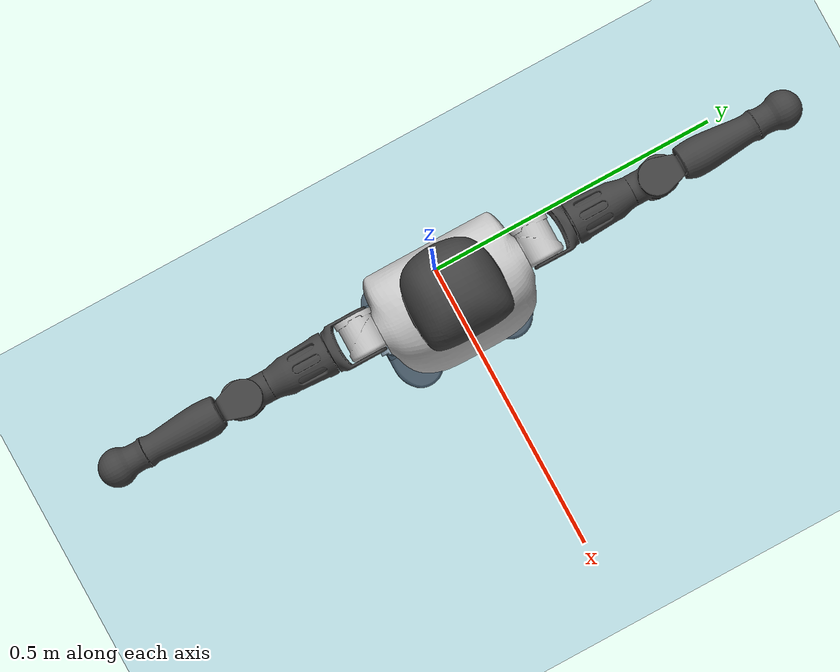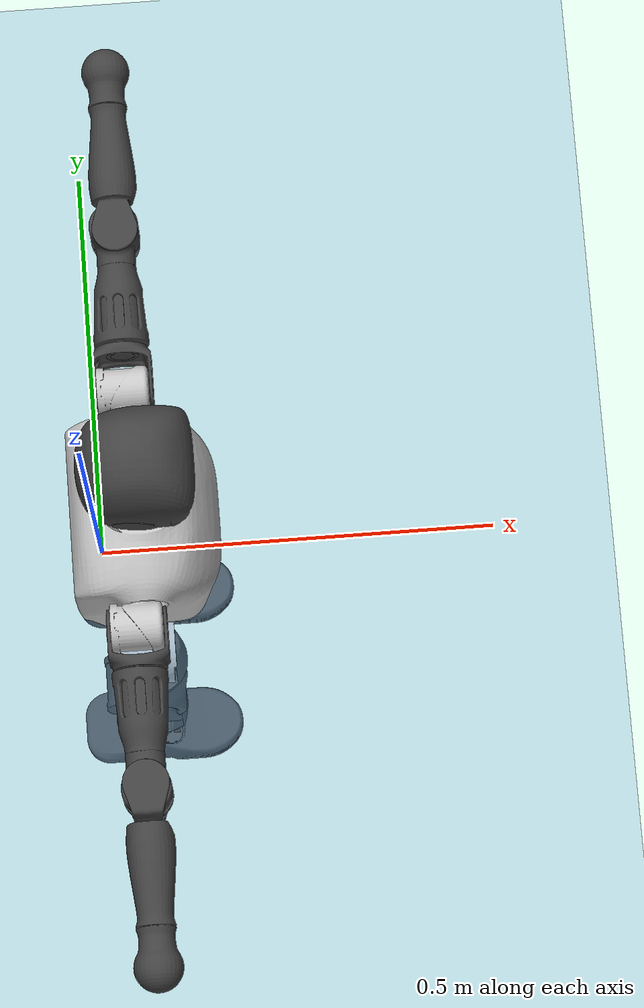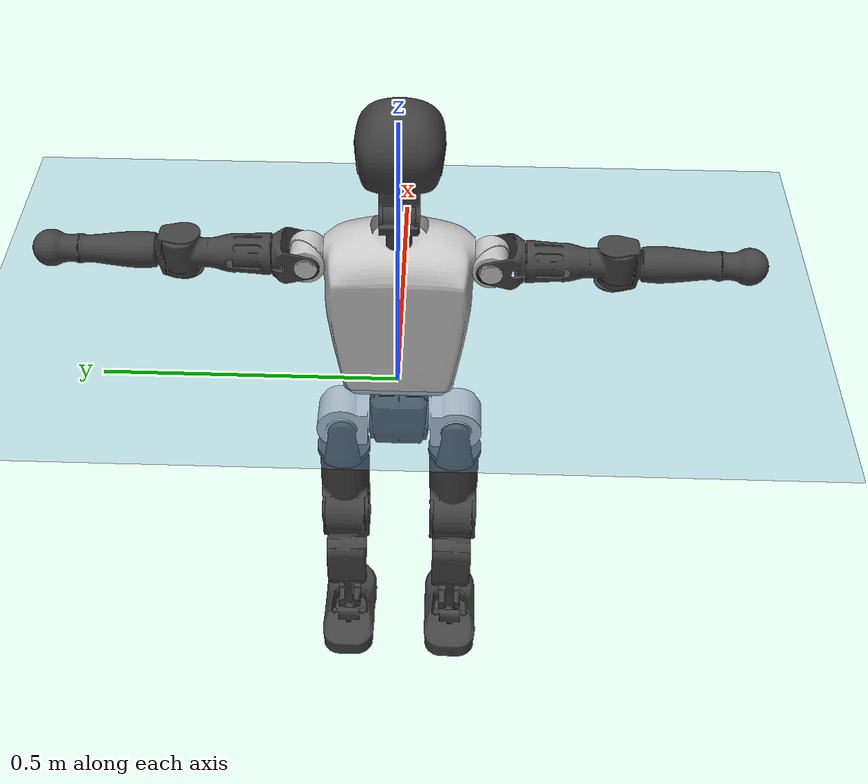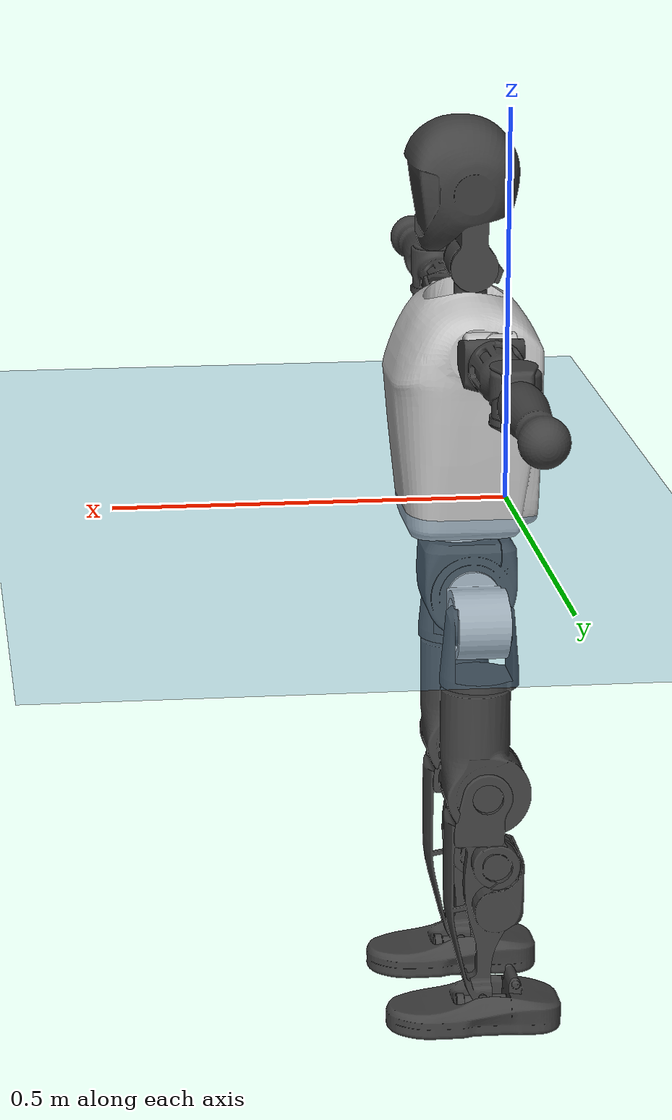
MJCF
<mujoco model="T1">
  <compiler angle="radian" assetdir="assets" balanceinertia="true" inertiafromgeom="false"/>

  <option timestep="0.005" density="1.2" viscosity="2e-05"/>

  <size nkey="1"/>

  <visual>
    <quality shadowsize="8192"/>
    <map shadowclip="0.5"/>
  </visual>

  <default>
    <default class="/">
      <joint armature="0.01" damping="0.01" frictionloss="0.1"/>
      <geom contype="0" conaffinity="0" group="1" solref="-1000 -80"/>
      <site size="0.01 0.005 0.005" group="5"/>
      <general forcelimited="true" biastype="affine" gainprm="25" biasprm="0 -25 -0.6"/>
      <default class="t1">
        <geom rgba="0.25 0.25 0.25 1"/>
        <default class="visual">
          <geom type="mesh" group="2"/>
        </default>
        <default class="collision">
          <geom group="3"/>
        </default>
        <default class="foot">
          <geom size="0.1115 0.05 0.015" type="box" condim="6" group="4" priority="1" solimp="0.015 1 0.015"/>
        </default>
        <default class="reward_collision_sphere">
          <geom group="5" rgba="1 0 0 1"/>
        </default>
      </default>
    </default>
  </default>

  <asset>
    <texture type="skybox" colorspace="auto" name="//unnamed_texture_0" builtin="gradient" rgb1="0.95 0.95 0.95" rgb2="0.95 0.95 0.95" width="100" height="600"/>
    <texture type="2d" colorspace="auto" name="texplane" builtin="checker" rgb1="0.345 0.575 0.748" rgb2="0.345 0.575 0.748" markrgb="1 1 1" width="512" height="512"/>
    <material name="MatPlane" class="/" texture="texplane" texuniform="true" texrepeat="2 2" specular="0.9"/>
    <mesh name="Trunk" class="/" file="Trunk.stl"/>
    <mesh name="H1" class="/" file="H1.stl"/>
    <mesh name="H2" class="/" file="H2.stl"/>
    <mesh name="AL1" class="/" file="AL1.stl"/>
    <mesh name="AL2" class="/" file="AL2.stl"/>
    <mesh name="AL3" class="/" file="AL3.stl"/>
    <mesh name="left_hand_link" class="/" file="left_hand_link.stl"/>
    <mesh name="AR1" class="/" file="AR1.stl"/>
    <mesh name="AR2" class="/" file="AR2.stl"/>
    <mesh name="AR3" class="/" file="AR3.stl"/>
    <mesh name="right_hand_link" class="/" file="right_hand_link.stl"/>
    <mesh name="Waist" class="/" file="Waist.stl"/>
    <mesh name="Hip_Pitch_Left" class="/" file="Hip_Pitch_Left.stl"/>
    <mesh name="Hip_Roll_Left" class="/" file="Hip_Roll_Left.stl"/>
    <mesh name="Hip_Yaw_Left" class="/" file="Hip_Yaw_Left.stl"/>
    <mesh name="Shank_Left" class="/" file="Shank_Left.stl"/>
    <mesh name="Ankle_Cross_Left" class="/" file="Ankle_Cross_Left.stl"/>
    <mesh name="left_foot_link" class="/" file="left_foot_link.stl"/>
    <mesh name="Hip_Pitch_Right" class="/" file="Hip_Pitch_Right.stl"/>
    <mesh name="Hip_Roll_Right" class="/" file="Hip_Roll_Right.stl"/>
    <mesh name="Hip_Yaw_Right" class="/" file="Hip_Yaw_Right.stl"/>
    <mesh name="Shank_Right" class="/" file="Shank_Right.stl"/>
    <mesh name="Ankle_Cross_Right" class="/" file="Ankle_Cross_Right.stl"/>
    <mesh name="right_foot_link" class="/" file="right_foot_link.stl"/>
  </asset>

  <worldbody>
    <geom name="floor" class="/" size="100 100 0.125" type="plane" group="0" material="MatPlane"/>
    <light name="toplight_shadow" class="/" pos="0 0 5" dir="0.0990148 0.0990148 -0.990148" type="directional" ambient="0.04 0.04 0.04" diffuse="0.55 0.55 0.55" specular="0.12 0.12 0.12"/>
    <light name="toplight_fill" class="/" pos="0 0 5" dir="0.0990148 0.0990148 -0.990148" type="directional" castshadow="false" ambient="0.04 0.04 0.04" diffuse="0.3 0.3 0.3" specular="0.08 0.08 0.08"/>
    <body name="trunk" childclass="t1" pos="7.68692e-05 0.000504464 -0.000503247" quat="1 -7.16942e-06 6.8549e-05 -2.26176e-05">
      <inertial pos="0.0426034 -1.32215e-05 0.105696" quat="0.999924 -0.0025399 -0.0118239 -0.00254302" mass="9.13351" diaginertia="0.02827 0.0635087 0.0575821"/>
      <joint name="//unnamed_joint_0" type="free" armature="0" damping="0" frictionloss="0"/>
      <geom name="//unnamed_geom_1" class="visual" rgba="0.76 0.76 0.76 1" mesh="Trunk"/>
      <geom name="//unnamed_geom_2" class="collision" size="0.0689022 0.0918696 0.137804" pos="0.0474423 0 0.120745" type="box"/>
      <geom name="//unnamed_geom_3" class="reward_collision_sphere" size="0.10565" pos="0.0474423 0 0.100621"/>
      <geom name="//unnamed_geom_4" class="reward_collision_sphere" size="0.0137804" pos="0.0474423 0.0815295 0"/>
      <geom name="//unnamed_geom_5" class="reward_collision_sphere" size="0.0137804" pos="0.0474423 -0.0815295 0"/>
      <geom name="//unnamed_geom_6" class="reward_collision_sphere" size="0.0137804" pos="0.0474423 0.102631 0.181118"/>
      <geom name="//unnamed_geom_7" class="reward_collision_sphere" size="0.0137804" pos="0.0474423 -0.102631 0.181118"/>
      <site name="imu" pos="0.000227561 0.000461962 0.002974" size="0.00918696"/>
      <camera name="track" pos="0 -1.91834 0" quat="0.707107 0.707107 0 0" mode="trackcom"/>
      <camera name="ego_camera" pos="0.096466 0 0.422609" quat="-0.5 -0.5 0.5 0.5"/>
      <body name="H1" pos="0.0486624 0.000714845 0.244512" quat="1 -1.70975e-05 4.54938e-05 -3.92802e-05">
        <inertial pos="-0.00109832 -0.00213241 0.0571765" quat="0.764198 -0.0134823 0.00232009 0.644837" mass="0.342246" diaginertia="7.53876e-05 0.000179286 0.000154352"/>
        <joint name="AAHead_yaw" pos="0 0 0" axis="-0.00245572 -0.000557745 0.999997" range="-1.58355 1.5877" armature="0.00931272" damping="0.0109173" frictionloss="0.0958788"/>
        <geom name="//unnamed_geom_8" class="visual" mesh="H1"/>
        <body name="H2" pos="-0.000542492 -0.000513353 0.0607186" quat="1 6.71482e-05 -0.000196734 -0.000535498">
          <inertial pos="0.00630623 -7.61064e-05 0.0986591" quat="0.987949 0.110556 -0.0746472 -0.0784945" mass="0.488841" diaginertia="0.00063044 0.00158531 0.00175373"/>
          <joint name="Head_pitch" pos="0 0 0" axis="-0.0026321 -0.999995 -0.00159798" range="-1.21324 0.350585" armature="0.00905179" damping="0.00575861" frictionloss="0.091087"/>
          <geom name="//unnamed_geom_9" class="visual" mesh="H2"/>
          <geom name="//unnamed_geom_10" class="collision" size="0.0734957" pos="0.00790705 0 0.110683"/>
          <geom name="//unnamed_geom_11" class="reward_collision_sphere" size="0.0826826" pos="0.0158141 0 0.100621"/>
        </body>
      </body>
      <body name="AL1" pos="0.0462104 0.101884 0.221217" quat="1 9.34318e-05 0.000390025 -5.0091e-05">
        <inertial pos="-0.00072021 0.0437304 -0.000108302" quat="0.504863 0.495493 -0.502983 0.496598" mass="0.413217" diaginertia="0.000430138 0.00105647 0.000305393"/>
        <joint name="Left_Shoulder_Pitch" pos="0 0 0" axis="-0.00302451 0.999995 0.000751898" range="-3.29465 1.21908" armature="0.0095673" damping="0.0123728" frictionloss="0.0954531"/>
        <geom name="//unnamed_geom_12" class="visual" rgba="0.76 0.76 0.76 1" mesh="AL1"/>
        <body name="AL2" pos="0.000545696 0.0452093 -0.000103525" quat="1 7.24052e-05 3.7531e-05 0.000169291">
          <inertial pos="0.00400648 0.0353635 -0.000245903" quat="0.487431 0.513329 -0.484382 0.51408" mass="0.124097" diaginertia="0.000123573 0.0002798 0.000182802"/>
          <joint name="Left_Shoulder_Roll" pos="0 0 0" axis="-1 5.96554e-05 -0.00019263" stiffness="0.00278212" range="-1.57278 1.73164" armature="0.00879485" damping="0.00204188" frictionloss="0.0905247"/>
          <geom name="//unnamed_geom_13" class="visual" mesh="AL2"/>
          <body name="AL3" pos="0.00168133 0.0589885 0.00112753" quat="1 -3.68951e-05 -2.73264e-05 -0.000120473">
            <inertial pos="5.75685e-05 0.082336 -0.000968105" quat="0.710329 0.703869 -0.000931506 7.49283e-05" mass="0.802124" diaginertia="0.00402863 0.0106968 0.000647"/>
            <joint name="Left_Elbow_Pitch" pos="0 0 0" axis="0.000154103 -1 -0.000207645" range="-2.26742 2.28664" armature="0.00905059" damping="0.00980157" frictionloss="0.0960686"/>
            <geom name="//unnamed_geom_14" class="visual" mesh="AL3"/>
            <geom name="//unnamed_geom_15" class="collision" size="0.0275609 0.0689022" pos="0 0.0479585 0" quat="0.707105 0.707108 0 0" type="cylinder"/>
            <geom name="//unnamed_geom_16" class="reward_collision_sphere" size="0.033073"/>
            <body name="left_hand_link" pos="0.00143653 0.140834 0.00131527" quat="1 1.65575e-05 -0.000324502 -0.000173153">
              <inertial pos="-0.000865375 0.104542 9.06477e-05" quat="0.706801 0.707412 0.000615263 0.000233465" mass="0.256351" diaginertia="0.00254065 0.00656044 0.00022149"/>
              <joint name="Left_Elbow_Yaw" pos="0 0 0" axis="-0.000671994 -0.00265417 0.999996" range="-2.42818 0.020676" armature="0.00928216" damping="0.00822843" frictionloss="0.0876761"/>
              <geom name="//unnamed_geom_17" class="visual" mesh="left_hand_link"/>
              <geom name="//unnamed_geom_18" class="collision" size="0.0275609 0.0803859" pos="0 0.124692 0" quat="0.707105 0.707108 0 0" type="cylinder"/>
              <geom name="//unnamed_geom_19" class="reward_collision_sphere" size="0.0459348"/>
              <geom name="//unnamed_geom_20" class="reward_collision_sphere" size="0.0321544" pos="0 0.105509 0"/>
              <geom name="//unnamed_geom_21" class="reward_collision_sphere" size="0.0321544" pos="0 0.206222 0"/>
            </body>
          </body>
        </body>
      </body>
      <body name="AR1" pos="0.0447171 -0.100661 0.219739" quat="1 -8.3108e-05 0.000591259 -8.06336e-05">
        <inertial pos="-0.00102503 -0.0435112 -0.000424055" quat="0.50389 0.495921 -0.504323 0.495798" mass="0.406377" diaginertia="0.000423839 0.00106219 0.000303048"/>
        <joint name="Right_Shoulder_Pitch" pos="0 0 0" axis="-0.00783498 -0.999969 0.000769909" range="-1.22689 3.3186" armature="0.0089436" damping="0.00268034" frictionloss="0.0887279"/>
        <geom name="//unnamed_geom_22" class="visual" rgba="0.76 0.76 0.76 1" mesh="AR1"/>
        <body name="AR2" pos="0.000298918 -0.0440226 0.000311308" quat="1 -1.51553e-05 -7.69116e-05 5.86936e-05">
          <inertial pos="0.00247238 -0.0364015 0.000961406" quat="0.512048 0.488057 -0.510826 0.488532" mass="0.125693" diaginertia="0.000124474 0.000285354 0.000183928"/>
          <joint name="Right_Shoulder_Roll" pos="0 0 0" axis="-0.999937 -0.00252942 0.0109493" range="-1.73467 1.5602" armature="0.00895508" damping="0.00794013" frictionloss="0.0907029"/>
          <geom name="//unnamed_geom_23" class="visual" mesh="AR2"/>
          <body name="AR3" pos="-0.000479259 -0.0579541 0.000852314" quat="1 0.000418345 1.29136e-05 2.17173e-05">
            <inertial pos="-0.000499394 -0.0823714 -0.000289684" quat="0.706771 0.707434 0.00154569 0.00305517" mass="0.800047" diaginertia="0.00404607 0.0105888 0.000650701"/>
            <joint name="Right_Elbow_Pitch" pos="0 0 0" axis="-0.000394587 0.999999 -0.00110095" range="-2.26254 2.26881" armature="0.00932847" damping="0.00710162" frictionloss="0.0921563"/>
            <geom name="//unnamed_geom_24" class="visual" mesh="AR3"/>
            <geom name="//unnamed_geom_25" class="collision" size="0.0275609 0.0689022" pos="0 -0.0479585 0" quat="0.707105 0.707108 0 0" type="cylinder"/>
            <geom name="//unnamed_geom_26" class="reward_collision_sphere" size="0.033073"/>
            <body name="right_hand_link" pos="-0.000141613 -0.141007 -0.000687473" quat="1 -0.000225402 -5.4395e-05 -2.20361e-05">
              <inertial pos="-0.000573058 -0.105067 0.000278964" quat="0.707977 0.706228 -0.00319983 -0.00110722" mass="0.253489" diaginertia="0.00256064 0.00663418 0.000224105"/>
              <joint name="Right_Elbow_Yaw" pos="0 0 0" axis="0.000266309 0.000820954 1" range="-0.00985821 2.43856" armature="0.00902876" damping="0.00731414" frictionloss="0.0918247"/>
              <geom name="//unnamed_geom_27" class="visual" mesh="right_hand_link"/>
              <geom name="//unnamed_geom_28" class="collision" size="0.0275609 0.0803859" pos="0 -0.124692 0" quat="0.707105 0.707108 0 0" type="cylinder"/>
              <geom name="//unnamed_geom_29" class="reward_collision_sphere" size="0.0459348"/>
              <geom name="//unnamed_geom_30" class="reward_collision_sphere" size="0.0321544" pos="0 -0.105509 0"/>
              <geom name="//unnamed_geom_31" class="reward_collision_sphere" size="0.0321544" pos="0 -0.206222 0"/>
            </body>
          </body>
        </body>
      </body>
      <body name="Waist" pos="0.0486147 -0.000968779 -0.115582" quat="1 0.000108072 0.000211141 4.10096e-05">
        <inertial pos="0.00206306 -0.0002282 0.00796176" quat="0.983636 0.000375593 -0.180151 0.00242394" mass="1.958" diaginertia="0.00162739 0.00423859 0.0048422"/>
        <joint name="Waist" pos="0 0 0" axis="-0.00256288 0.00284766 0.999993" range="-1.56783 1.57096" armature="0.00915902" damping="0.0122015" frictionloss="0.0891508"/>
        <geom name="//unnamed_geom_32" class="visual" mesh="Waist"/>
        <body name="Hip_Pitch_Left" pos="-0.000665563 0.10119 -0.000104012" quat="1 5.66652e-05 9.9283e-05 -0.000115217">
          <inertial pos="0.00030901 -0.00724158 -0.0181418" quat="0.975887 0.217605 0.0170615 0.0007621" mass="0.79247" diaginertia="0.00056081 0.00121078 0.00132002"/>
          <joint name="Left_Hip_Pitch" pos="0 0 0" axis="0.00228716 0.999996 0.00134875" range="-1.81112 1.57045" armature="0.00925626" damping="0.00922673" frictionloss="0.089467"/>
          <geom name="//unnamed_geom_33" class="visual" rgba="0.76 0.76 0.76 1" mesh="Hip_Pitch_Left"/>
          <body name="Hip_Roll_Left" pos="0.000958676 -0.000682832 -0.0213413" quat="1 -0.000539667 -0.000291144 -0.00038983">
            <inertial pos="0.000858824 0.000348768 -0.0538279" quat="0.710474 -0.00625927 -0.00786319 0.703651" mass="0.299376" diaginertia="0.0005428 0.00124687 0.000535252"/>
            <joint name="Left_Hip_Roll" pos="0 0 0" axis="-0.999992 -0.0024058 -0.00314703" stiffness="0.000415623" range="-1.55683 0.210628" armature="0.00928655" damping="0.0120926" frictionloss="0.0922654"/>
            <geom name="//unnamed_geom_34" class="visual" mesh="Hip_Roll_Left"/>
            <geom name="//unnamed_geom_35" class="reward_collision_sphere" size="0.0505283"/>
            <body name="Hip_Yaw_Left" pos="0.00209454 -0.000481534 -0.0828929" quat="1 -0.000276745 -3.08273e-05 -0.000354822">
              <inertial pos="-0.00483789 -0.000802629 -0.0890168" quat="0.695261 -0.0347469 -0.0305873 0.717265" mass="1.67877" diaginertia="0.00799809 0.0204534 0.00264767"/>
              <joint name="Left_Hip_Yaw" pos="0 0 0" axis="-0.00608486 -0.000201226 -0.999981" stiffness="0.000333524" range="-0.997711 0.994693" armature="0.00939651" damping="0.00711017" frictionloss="0.0879637"/>
              <geom name="//unnamed_geom_36" class="visual" mesh="Hip_Yaw_Left"/>
              <geom name="//unnamed_geom_37" class="collision" size="0.0459348 0.0734957" type="cylinder"/>
              <body name="Shank_Left" pos="-0.011662 -0.000401533 -0.136012" quat="1 -9.07357e-06 2.35212e-07 -1.24516e-05">
                <inertial pos="-0.00481061 0.000478789 -0.125306" quat="0.997505 0.000228847 -0.0259936 0.0656335" mass="1.36147" diaginertia="0.0107884 0.0284512 0.00193709"/>
                <joint name="Left_Knee_Pitch" pos="0 0 0" axis="0.00226415 0.999997 0.00129325" range="-0.0196747 2.32561" armature="0.00916127" damping="0.00843154" frictionloss="0.0928768"/>
                <geom name="//unnamed_geom_38" class="visual" mesh="Shank_Left"/>
                <geom name="//unnamed_geom_39" class="collision" size="0.0459348 0.0689022" pos="0 0 -0.120745" type="cylinder"/>
                <geom name="//unnamed_geom_40" class="reward_collision_sphere" size="0.0597152"/>
                <body name="Ankle_Cross_Left" pos="-0.00014035 0.000218003 -0.281263" quat="1 -0.000294755 -0.000240354 0.000183287">
                  <inertial pos="-0.00338748 0.000207488 -0.00713358" quat="0.443044 0.551104 0.550992 0.443175" mass="0.0570115" diaginertia="8.90302e-06 2.10851e-05 1.17384e-05"/>
                  <joint name="Left_Ankle_Pitch" pos="0 0 0" axis="-0.00323175 0.99999 -0.00322059" range="-0.866062 0.344499" armature="0.00902527" damping="0.00411334" frictionloss="0.094969"/>
                  <geom name="//unnamed_geom_41" class="visual" mesh="Ankle_Cross_Left"/>
                  <body name="left_foot_link" pos="-0.000367101 -0.00106464 -0.0121889" quat="1 4.98647e-05 9.85135e-05 0.000166164">
                    <inertial pos="-0.000315735 -0.000109733 -0.00910189" quat="0.00316804 0.622606 -0.00177768 0.782527" mass="0.528652" diaginertia="0.000847602 0.00191538 0.00223419"/>
                    <joint name="Left_Ankle_Roll" pos="0 0 0" axis="-0.999999 0.0013641 -0.0009968" range="-0.433873 0.452555" armature="0.00962091" damping="0.00877621" frictionloss="0.0903693"/>
                    <geom name="//unnamed_geom_42" class="visual" mesh="left_foot_link"/>
                    <geom name="left_foot" class="foot" size="0.102688 0.0435715 0.0140077" pos="0.00790705 0 -0.0150932"/>
                    <geom name="//unnamed_geom_44" class="reward_collision_sphere" size="0.0477722" pos="0.00790705 0 -0.0150932"/>
                    <geom name="//unnamed_geom_45" class="reward_collision_sphere" size="0.0275609" pos="0.075117 -0.0220609 -0.0150932"/>
                    <geom name="//unnamed_geom_46" class="reward_collision_sphere" size="0.0275609" pos="-0.0553493 -0.0220609 -0.0150932"/>
                    <site name="left_foot" class="foot" pos="0.00790705 0 -0.0150932" size="0.00918696"/>
                  </body>
                </body>
              </body>
            </body>
          </body>
        </body>
        <body name="Hip_Pitch_Right" pos="-0.000736759 -0.101075 0.000192153" quat="1 0.000230169 -0.000420582 0.000152253">
          <inertial pos="0.000243658 0.00766729 -0.0179172" quat="0.973847 -0.226566 0.0170027 -0.000598183" mass="0.806331" diaginertia="0.00056249 0.00120237 0.00130247"/>
          <joint name="Right_Hip_Pitch" pos="0 0 0" axis="-0.00141489 -0.999999 -0.000652909" range="-1.56364 1.81841" armature="0.00981581" damping="0.00483693" frictionloss="0.0958812"/>
          <geom name="//unnamed_geom_47" class="visual" rgba="0.76 0.76 0.76 1" mesh="Hip_Pitch_Right"/>
          <body name="Hip_Roll_Right" pos="0.000150691 0.00092879 -0.0198737" quat="1 0.000362656 0.000300418 -8.92695e-05">
            <inertial pos="0.000868246 -0.000980764 -0.0534056" quat="0.706165 -0.0061076 -0.00596025 0.707996" mass="0.295583" diaginertia="0.000532475 0.00120774 0.000522344"/>
            <joint name="Right_Hip_Roll" pos="0 0 0" axis="-0.99999 0.00146247 -0.0043186" range="-0.201499 1.57176" armature="0.00907216" damping="0.00698005" frictionloss="0.0939322"/>
            <geom name="//unnamed_geom_48" class="visual" mesh="Hip_Roll_Right"/>
            <geom name="//unnamed_geom_49" class="reward_collision_sphere" size="0.0505283"/>
            <body name="Hip_Yaw_Right" pos="-1.42355e-05 0.000379084 -0.0832889" quat="1 1.66574e-05 -1.05545e-05 -8.80969e-06">
              <inertial pos="-0.00498957 -0.00160422 -0.090749" quat="0.713619 -0.0319107 -0.0352666 0.698918" mass="1.63688" diaginertia="0.00782758 0.0202406 0.00262827"/>
              <joint name="Right_Hip_Yaw" pos="0 0 0" axis="-0.000674367 -8.09812e-05 -1" stiffness="0.000557286" range="-0.984819 0.999512" armature="0.00895831" damping="0.00689357" frictionloss="0.0918295"/>
              <geom name="//unnamed_geom_50" class="visual" mesh="Hip_Yaw_Right"/>
              <geom name="//unnamed_geom_51" class="collision" size="0.0459348 0.0734957" type="cylinder"/>
              <body name="Shank_Right" pos="-0.0104557 -0.000984346 -0.135942" quat="1 0.000251717 8.38899e-05 0.000135911">
                <inertial pos="-0.00515695 -0.000459692 -0.122512" quat="0.999292 -0.00272659 -0.0230849 -0.0295782" mass="1.39548" diaginertia="0.0107241 0.0286369 0.00203548"/>
                <joint name="Right_Knee_Pitch" pos="0 0 0" axis="-0.00360847 -0.999978 -0.0055711" range="-2.3595 -0.0137582" armature="0.00916906" damping="0.00774939" frictionloss="0.0909822"/>
                <geom name="//unnamed_geom_52" class="visual" mesh="Shank_Right"/>
                <geom name="//unnamed_geom_53" class="collision" size="0.0459348 0.0689022" pos="0 0 -0.120745" type="cylinder"/>
                <geom name="//unnamed_geom_54" class="reward_collision_sphere" size="0.0597152"/>
                <body name="Ankle_Cross_Right" pos="0.000583777 -0.000442097 -0.281283" quat="1 -0.000116599 8.31285e-05 0.000149048">
                  <inertial pos="-0.00314834 0.000523233 -0.00863169" quat="0.445805 0.550962 0.548695 0.443433" mass="0.0565309" diaginertia="8.81921e-06 2.06839e-05 1.15622e-05"/>
                  <joint name="Right_Ankle_Pitch" pos="0 0 0" axis="0.000715307 -1 0.000388926" range="-0.364663 0.860072" armature="0.0091442" damping="0.00863327" frictionloss="0.0933675"/>
                  <geom name="//unnamed_geom_55" class="visual" mesh="Ankle_Cross_Right"/>
                  <body name="right_foot_link" pos="0.000955678 -0.00125209 -0.0120218" quat="1 0.000195995 0.000199783 3.19801e-05">
                    <inertial pos="-0.00124981 0.000605972 -0.0093387" quat="0.00275502 0.620492 -0.00208937 0.784205" mass="0.528381" diaginertia="0.000831297 0.00192973 0.00226867"/>
                    <joint name="Right_Ankle_Roll" pos="0 0 0" axis="-1 0.000566215 0.000248968" range="-0.448457 0.436453" armature="0.00877722" damping="0.01318" frictionloss="0.0908116"/>
                    <geom name="//unnamed_geom_56" class="visual" mesh="right_foot_link"/>
                    <geom name="right_foot" class="foot" size="0.0993584 0.0456669 0.0141223" pos="0.00790705 0 -0.0150932"/>
                    <geom name="//unnamed_geom_58" class="reward_collision_sphere" size="0.0367478"/>
                    <geom name="//unnamed_geom_59" class="reward_collision_sphere" size="0.0275609" pos="0.00790705 0 -0.0150932"/>
                    <geom name="//unnamed_geom_60" class="reward_collision_sphere" size="0.0275609" pos="0.075117 0.0220609 -0.0150932"/>
                    <geom name="//unnamed_geom_61" class="reward_collision_sphere" size="0.0275609" pos="-0.0553493 0.0220609 -0.0150932"/>
                    <site name="right_foot" class="foot" pos="0.00790705 0 -0.0150932" size="0.00918696"/>
                  </body>
                </body>
              </body>
            </body>
          </body>
        </body>
      </body>
    </body>
  </worldbody>

  <contact>
    <pair class="/" geom1="floor" geom2="left_foot" name="//unnamed_contact_0"/>
    <pair class="/" geom1="floor" geom2="right_foot" name="//unnamed_contact_1"/>
  </contact>

  <actuator>
    <general name="AAHead_yaw" class="/" joint="AAHead_yaw" forcerange="-6.25645 6.25645" gainprm="22.9965" biasprm="0 -22.9965 -0.553022"/>
    <general name="Head_pitch" class="/" joint="Head_pitch" forcerange="-6.28028 6.28028" gainprm="22.9965" biasprm="0 -22.9965 -0.553022"/>
    <general name="Left_Shoulder_Pitch" class="/" joint="Left_Shoulder_Pitch" forcerange="-16.8419 16.8419" gainprm="22.9965" biasprm="0 -22.9965 -0.553022"/>
    <general name="Left_Shoulder_Roll" class="/" joint="Left_Shoulder_Roll" forcerange="-16.5612 16.5612" gainprm="22.9965" biasprm="0 -22.9965 -0.553022"/>
    <general name="Left_Elbow_Pitch" class="/" joint="Left_Elbow_Pitch" forcerange="-16.8759 16.8759" gainprm="22.9965" biasprm="0 -22.9965 -0.553022"/>
    <general name="Left_Elbow_Yaw" class="/" joint="Left_Elbow_Yaw" forcerange="-17.1754 17.1754" gainprm="22.9965" biasprm="0 -22.9965 -0.553022"/>
    <general name="Right_Shoulder_Pitch" class="/" joint="Right_Shoulder_Pitch" forcerange="-16.1809 16.1809" gainprm="22.9965" biasprm="0 -22.9965 -0.553022"/>
    <general name="Right_Shoulder_Roll" class="/" joint="Right_Shoulder_Roll" forcerange="-16.6763 16.6763" gainprm="22.9965" biasprm="0 -22.9965 -0.553022"/>
    <general name="Right_Elbow_Pitch" class="/" joint="Right_Elbow_Pitch" forcerange="-16.9303 16.9303" gainprm="22.9965" biasprm="0 -22.9965 -0.553022"/>
    <general name="Right_Elbow_Yaw" class="/" joint="Right_Elbow_Yaw" forcerange="-16.0961 16.0961" gainprm="22.9965" biasprm="0 -22.9965 -0.553022"/>
    <general name="Waist" class="/" joint="Waist" forcerange="-27.1914 27.1914" gainprm="22.9965" biasprm="0 -22.9965 -0.553022"/>
    <general name="Left_Hip_Pitch" class="/" joint="Left_Hip_Pitch" forcerange="-41.6852 41.6852" gainprm="22.9965" biasprm="0 -22.9965 -0.553022"/>
    <general name="Left_Hip_Roll" class="/" joint="Left_Hip_Roll" forcerange="-27.7822 27.7822" gainprm="22.9965" biasprm="0 -22.9965 -0.553022"/>
    <general name="Left_Hip_Yaw" class="/" joint="Left_Hip_Yaw" forcerange="-26.4922 26.4922" gainprm="22.9965" biasprm="0 -22.9965 -0.553022"/>
    <general name="Left_Knee_Pitch" class="/" joint="Left_Knee_Pitch" forcerange="-53.7263 53.7263" gainprm="22.9965" biasprm="0 -22.9965 -0.553022"/>
    <general name="Left_Ankle_Pitch" class="/" joint="Left_Ankle_Pitch" forcerange="-17.399 17.399" gainprm="22.9965" biasprm="0 -22.9965 -0.553022"/>
    <general name="Left_Ankle_Roll" class="/" joint="Left_Ankle_Roll" forcerange="-13.9021 13.9021" gainprm="22.9965" biasprm="0 -22.9965 -0.553022"/>
    <general name="Right_Hip_Pitch" class="/" joint="Right_Hip_Pitch" forcerange="-41.5554 41.5554" gainprm="22.9965" biasprm="0 -22.9965 -0.553022"/>
    <general name="Right_Hip_Roll" class="/" joint="Right_Hip_Roll" forcerange="-28.477 28.477" gainprm="22.9965" biasprm="0 -22.9965 -0.553022"/>
    <general name="Right_Hip_Yaw" class="/" joint="Right_Hip_Yaw" forcerange="-28.5596 28.5596" gainprm="22.9965" biasprm="0 -22.9965 -0.553022"/>
    <general name="Right_Knee_Pitch" class="/" joint="Right_Knee_Pitch" forcerange="-54.8702 54.8702" gainprm="22.9965" biasprm="0 -22.9965 -0.553022"/>
    <general name="Right_Ankle_Pitch" class="/" joint="Right_Ankle_Pitch" forcerange="-17.757 17.757" gainprm="22.9965" biasprm="0 -22.9965 -0.553022"/>
    <general name="Right_Ankle_Roll" class="/" joint="Right_Ankle_Roll" forcerange="-13.4923 13.4923" gainprm="22.9965" biasprm="0 -22.9965 -0.553022"/>
  </actuator>

  <sensor>
    <gyro site="imu" name="imu_angular_velocity"/>
    <velocimeter site="imu" name="imu_linear_velocity"/>
    <framelinvel objtype="site" objname="left_foot" name="left_foot_global_linear_velocity"/>
    <framelinvel objtype="site" objname="right_foot" name="right_foot_global_linear_velocity"/>
  </sensor>

  <keyframe>
    <key name="home" qpos="0 0 0.6385 1 0 0 0 0 0 0 1.4 0 -0.4 0 -1.4 0 0.4 0 -0.4 0 0 0.8 -0.4 0 0.4 0 0 -0.8 0.4 0"/>
  </keyframe>
</mujoco>
